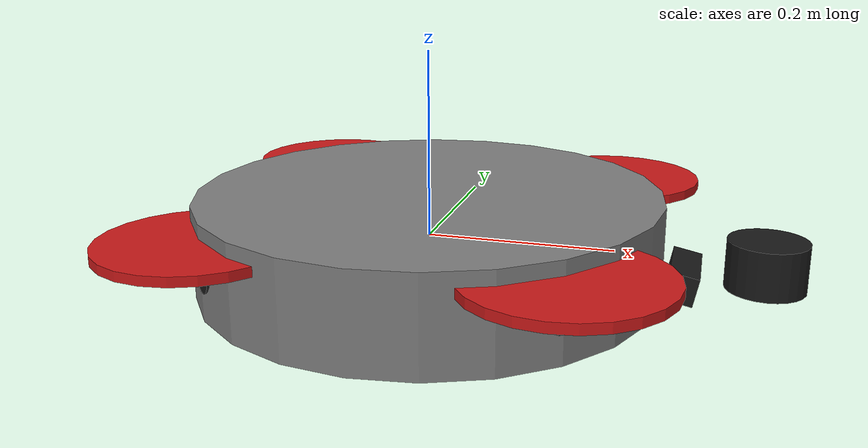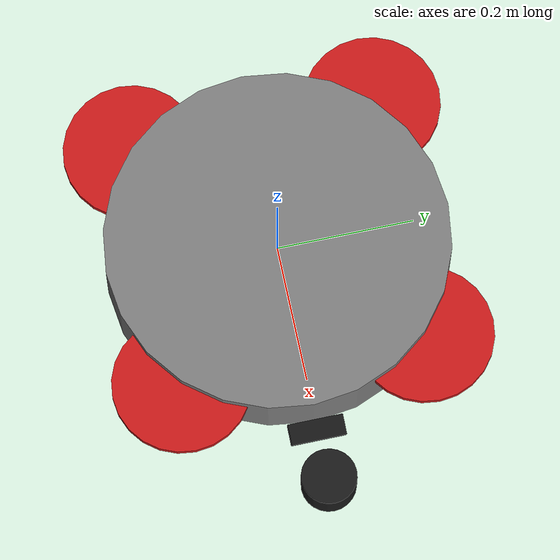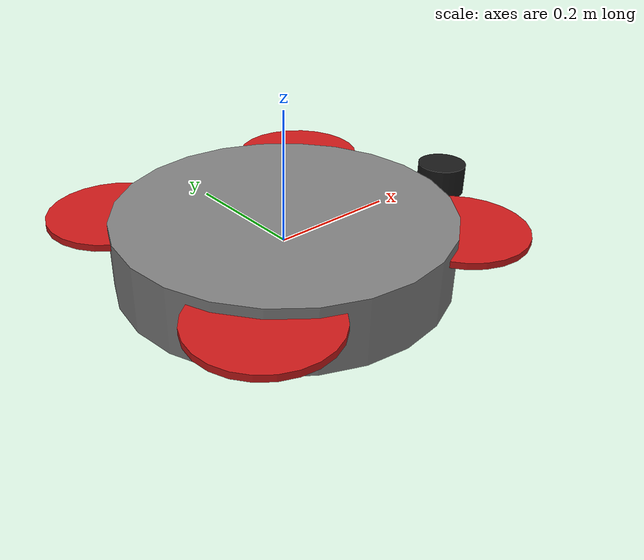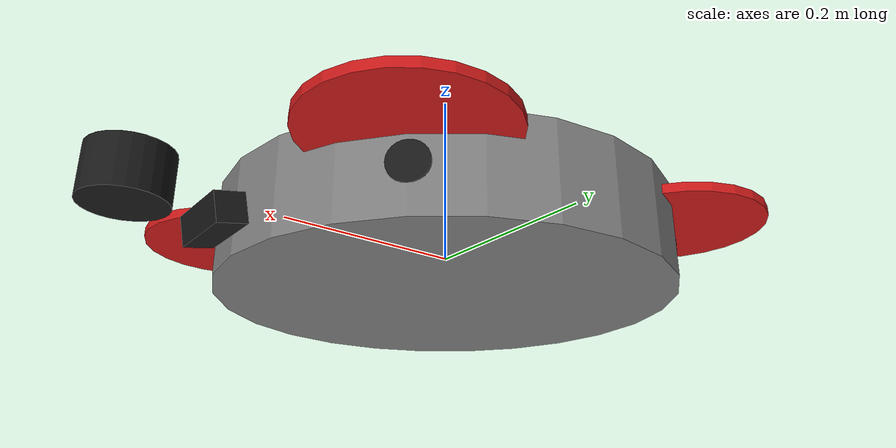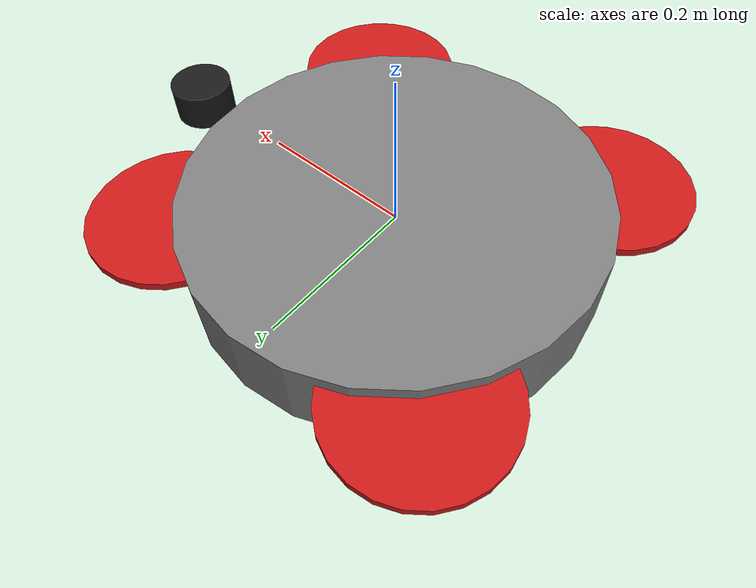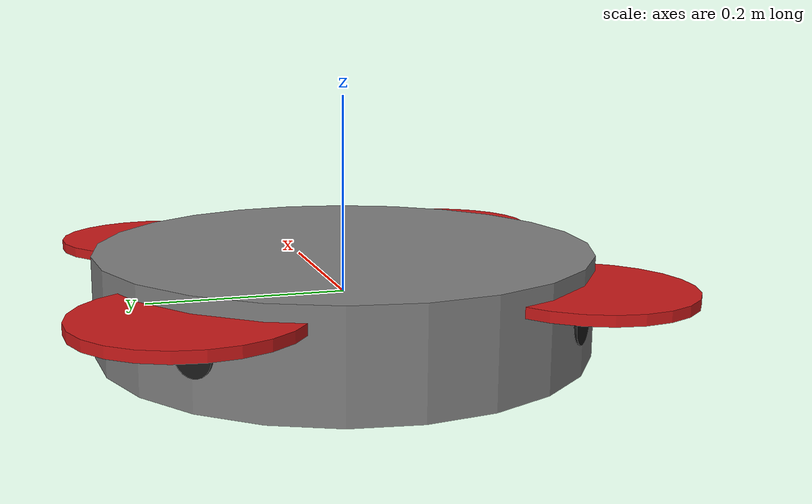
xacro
<?xml version="1.0"?>
<robot name="quadcopter" xmlns:xacro="http://ros.org/wiki/xacro">

  <!-- ==================== PROPERTIES ==================== -->
  <xacro:property name="body_mass" value="1.5"/>
  <xacro:property name="body_radius" value="0.25"/>
  <xacro:property name="body_height" value="0.1"/>
  <xacro:property name="arm_length" value="0.25"/>
  <xacro:property name="arm_radius" value="0.02"/>
  <xacro:property name="rotor_radius" value="0.1"/>
  <xacro:property name="rotor_height" value="0.01"/>
  <xacro:property name="rotor_mass" value="0.05"/>

  <!-- ==================== MATERIALS ==================== -->
  <material name="grey">
    <color rgba="0.5 0.5 0.5 1"/>
  </material>
  <material name="black">
    <color rgba="0.1 0.1 0.1 1"/>
  </material>
  <material name="red">
    <color rgba="0.8 0.1 0.1 1"/>
  </material>

  <!-- ==================== BASE LINK ==================== -->
  <link name="base_link">
    <inertial>
      <mass value="${body_mass}"/>
      <origin xyz="0 0 0" rpy="0 0 0"/>
      <inertia ixx="0.029" ixy="0" ixz="0" iyy="0.029" iyz="0" izz="0.055"/>
    </inertial>
    <visual>
      <origin xyz="0 0 0" rpy="0 0 0"/>
      <geometry>
        <cylinder radius="${body_radius}" length="${body_height}"/>
      </geometry>
      <material name="grey"/>
    </visual>
    <collision>
      <origin xyz="0 0 0" rpy="0 0 0"/>
      <geometry>
        <cylinder radius="${body_radius}" length="${body_height}"/>
      </geometry>
    </collision>
  </link>

  <!-- ==================== ARM MACRO ==================== -->
  <xacro:macro name="arm" params="name angle">
    <link name="${name}_arm">
      <inertial>
        <mass value="0.05"/>
        <origin xyz="${arm_length/2} 0 0" rpy="0 0 0"/>
        <inertia ixx="0.0001" ixy="0" ixz="0" iyy="0.001" iyz="0" izz="0.001"/>
      </inertial>
      <visual>
        <origin xyz="${arm_length/2} 0 0" rpy="0 ${pi/2} 0"/>
        <geometry>
          <cylinder radius="${arm_radius}" length="${arm_length}"/>
        </geometry>
        <material name="black"/>
      </visual>
      <collision>
        <origin xyz="${arm_length/2} 0 0" rpy="0 ${pi/2} 0"/>
        <geometry>
          <cylinder radius="${arm_radius}" length="${arm_length}"/>
        </geometry>
      </collision>
    </link>

    <joint name="${name}_arm_joint" type="fixed">
      <parent link="base_link"/>
      <child link="${name}_arm"/>
      <origin xyz="0 0 0" rpy="0 0 ${angle}"/>
    </joint>

    <link name="${name}_rotor">
      <inertial>
        <mass value="${rotor_mass}"/>
        <origin xyz="0 0 0" rpy="0 0 0"/>
        <inertia ixx="0.0001" ixy="0" ixz="0" iyy="0.0001" iyz="0" izz="0.0002"/>
      </inertial>
      <visual>
        <origin xyz="0 0 0" rpy="0 0 0"/>
        <geometry>
          <cylinder radius="${rotor_radius}" length="${rotor_height}"/>
        </geometry>
        <material name="red"/>
      </visual>
      <collision>
        <origin xyz="0 0 0" rpy="0 0 0"/>
        <geometry>
          <cylinder radius="${rotor_radius}" length="${rotor_height}"/>
        </geometry>
      </collision>
    </link>

    <joint name="${name}_rotor_joint" type="fixed">
      <parent link="${name}_arm"/>
      <child link="${name}_rotor"/>
      <origin xyz="${arm_length} 0 0.03" rpy="0 0 0"/>
    </joint>
  </xacro:macro>

  <!-- Create 4 arms at 45, 135, 225, 315 degrees -->
  <xacro:arm name="front_right" angle="${-pi/4}"/>
  <xacro:arm name="front_left" angle="${pi/4}"/>
  <xacro:arm name="rear_left" angle="${3*pi/4}"/>
  <xacro:arm name="rear_right" angle="${-3*pi/4}"/>

  <!-- ==================== CAMERA SENSOR ==================== -->
  <link name="camera_link">
    <inertial>
      <mass value="0.05"/>
      <origin xyz="0 0 0" rpy="0 0 0"/>
      <inertia ixx="0.00001" ixy="0" ixz="0" iyy="0.00001" iyz="0" izz="0.00001"/>
    </inertial>
    <visual>
      <origin xyz="0 0 0" rpy="0 0 0"/>
      <geometry>
        <box size="0.03 0.08 0.03"/>
      </geometry>
      <material name="black"/>
    </visual>
    <collision>
      <origin xyz="0 0 0" rpy="0 0 0"/>
      <geometry>
        <box size="0.03 0.08 0.03"/>
      </geometry>
    </collision>
  </link>

  <joint name="camera_joint" type="fixed">
    <parent link="base_link"/>
    <child link="camera_link"/>
    <origin xyz="${body_radius + 0.02} 0 -0.02" rpy="0 0.2 0"/>
  </joint>

  <link name="camera_optical_frame"/>
  <joint name="camera_optical_joint" type="fixed">
    <parent link="camera_link"/>
    <child link="camera_optical_frame"/>
    <origin xyz="0 0 0" rpy="${-pi/2} 0 ${-pi/2}"/>
  </joint>

  <!-- Camera Gazebo Plugin -->
  <gazebo reference="camera_link">
    <sensor type="camera" name="front_camera">
      <update_rate>30.0</update_rate>
      <always_on>true</always_on>
      <visualize>true</visualize>
      <camera name="front_camera">
        <horizontal_fov>1.3962634</horizontal_fov>
        <image>
          <width>640</width>
          <height>480</height>
          <format>R8G8B8</format>
        </image>
        <clip>
          <near>0.02</near>
          <far>100</far>
        </clip>
        <noise>
          <type>gaussian</type>
          <mean>0.0</mean>
          <stddev>0.007</stddev>
        </noise>
      </camera>
      <plugin name="camera_controller" filename="libgazebo_ros_camera.so">
        <alwaysOn>true</alwaysOn>
        <updateRate>30.0</updateRate>
        <cameraName>camera</cameraName>
        <imageTopicName>rgb/image_raw</imageTopicName>
        <cameraInfoTopicName>rgb/camera_info</cameraInfoTopicName>
        <frameName>camera_optical_frame</frameName>
        <hackBaseline>0.0</hackBaseline>
        <distortionK1>0.0</distortionK1>
        <distortionK2>0.0</distortionK2>
        <distortionK3>0.0</distortionK3>
        <distortionT1>0.0</distortionT1>
        <distortionT2>0.0</distortionT2>
      </plugin>
    </sensor>
  </gazebo>

  <!-- ==================== LIDAR SENSOR ==================== -->
  <link name="lidar_link">
    <inertial>
      <mass value="0.2"/>
      <origin xyz="0 0 0" rpy="0 0 0"/>
      <inertia ixx="0.0001" ixy="0" ixz="0" iyy="0.0001" iyz="0" izz="0.0001"/>
    </inertial>
    <visual>
      <origin xyz="0 0 0" rpy="0 0 0"/>
      <geometry>
        <cylinder radius="0.04" length="0.05"/>
      </geometry>
      <material name="black"/>
    </visual>
    <collision>
      <origin xyz="0 0 0" rpy="0 0 0"/>
      <geometry>
        <cylinder radius="0.04" length="0.05"/>
      </geometry>
    </collision>
  </link>

  <joint name="lidar_joint" type="fixed">
    <parent link="base_link"/>
    <child link="lidar_link"/>
    <!-- LIDAR positioned at front of drone, ahead of legs -->
    <!-- X = body_radius (0.25) + 0.10m offset = 0.35m forward -->
    <origin xyz="${body_radius + 0.10} 0 0" rpy="0 0 0"/>
  </joint>

  <!-- 2D LiDAR Gazebo Plugin (Front 180 degree scan) -->
  <gazebo reference="lidar_link">
    <sensor type="ray" name="lidar_sensor">
      <always_on>true</always_on>
      <update_rate>15.0</update_rate>
      <visualize>true</visualize>
      <ray>
        <scan>
          <horizontal>
            <samples>120</samples>
            <resolution>1</resolution>
            <!-- Front 120 degrees: -60 to +60 degrees (avoids propellers at ±45°) -->
            <min_angle>-1.0472</min_angle>
            <max_angle>1.0472</max_angle>
          </horizontal>
        </scan>
        <range>
          <!-- Min 0.50m to filter out any drone body/propeller readings -->
          <min>0.50</min>
          <max>12.0</max>
          <resolution>0.01</resolution>
        </range>
        <noise>
          <type>gaussian</type>
          <mean>0.0</mean>
          <stddev>0.01</stddev>
        </noise>
      </ray>
      <plugin name="lidar_controller" filename="libgazebo_ros_laser.so">
        <topicName>/scan</topicName>
        <frameName>lidar_link</frameName>
      </plugin>
    </sensor>
  </gazebo>

  <!-- ==================== IMU SENSOR ==================== -->
  <link name="imu_link">
    <inertial>
      <mass value="0.01"/>
      <origin xyz="0 0 0" rpy="0 0 0"/>
      <inertia ixx="0.00001" ixy="0" ixz="0" iyy="0.00001" iyz="0" izz="0.00001"/>
    </inertial>
  </link>

  <joint name="imu_joint" type="fixed">
    <parent link="base_link"/>
    <child link="imu_link"/>
    <origin xyz="0 0 0" rpy="0 0 0"/>
  </joint>

  <gazebo reference="imu_link">
    <sensor type="imu" name="imu_sensor">
      <always_on>true</always_on>
      <update_rate>100.0</update_rate>
      <visualize>false</visualize>
      <plugin name="imu_plugin" filename="libgazebo_ros_imu_sensor.so">
        <topicName>/imu/data</topicName>
        <bodyName>imu_link</bodyName>
        <updateRateHZ>100.0</updateRateHZ>
        <gaussianNoise>0.01</gaussianNoise>
        <xyzOffset>0 0 0</xyzOffset>
        <rpyOffset>0 0 0</rpyOffset>
        <frameName>imu_link</frameName>
      </plugin>
    </sensor>
  </gazebo>

  <!-- ==================== GAZEBO MATERIAL COLORS ==================== -->
  <gazebo reference="base_link">
    <material>Gazebo/Grey</material>
  </gazebo>

  <gazebo reference="front_right_arm">
    <material>Gazebo/DarkGrey</material>
  </gazebo>
  <gazebo reference="front_left_arm">
    <material>Gazebo/DarkGrey</material>
  </gazebo>
  <gazebo reference="rear_left_arm">
    <material>Gazebo/DarkGrey</material>
  </gazebo>
  <gazebo reference="rear_right_arm">
    <material>Gazebo/DarkGrey</material>
  </gazebo>

  <gazebo reference="front_right_rotor">
    <material>Gazebo/Red</material>
  </gazebo>
  <gazebo reference="front_left_rotor">
    <material>Gazebo/Red</material>
  </gazebo>
  <gazebo reference="rear_left_rotor">
    <material>Gazebo/Red</material>
  </gazebo>
  <gazebo reference="rear_right_rotor">
    <material>Gazebo/Red</material>
  </gazebo>

  <gazebo reference="camera_link">
    <material>Gazebo/Black</material>
  </gazebo>

  <gazebo reference="lidar_link">
    <material>Gazebo/Blue</material>
  </gazebo>

</robot>
